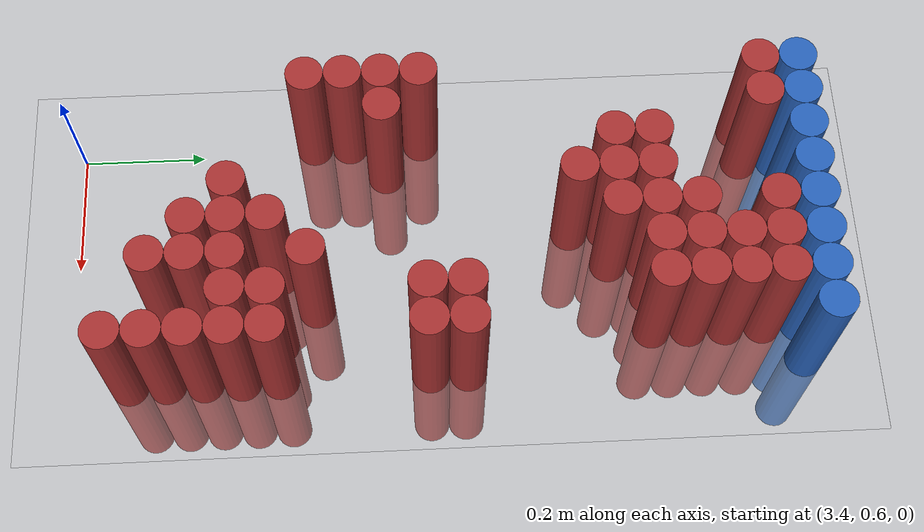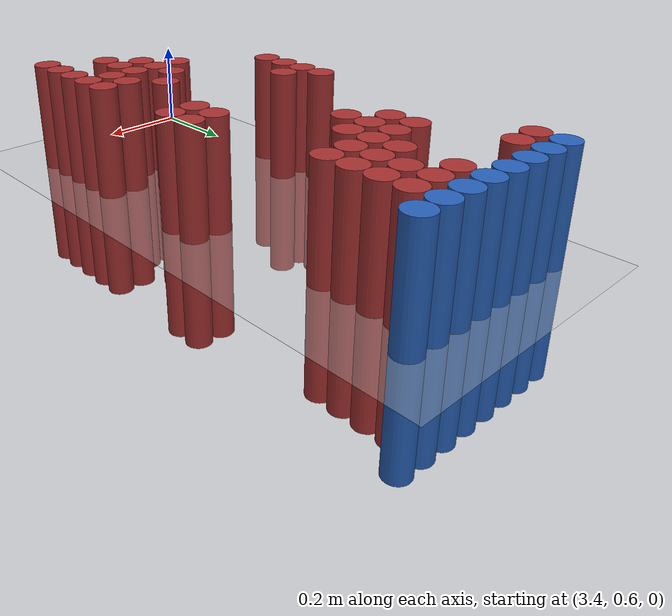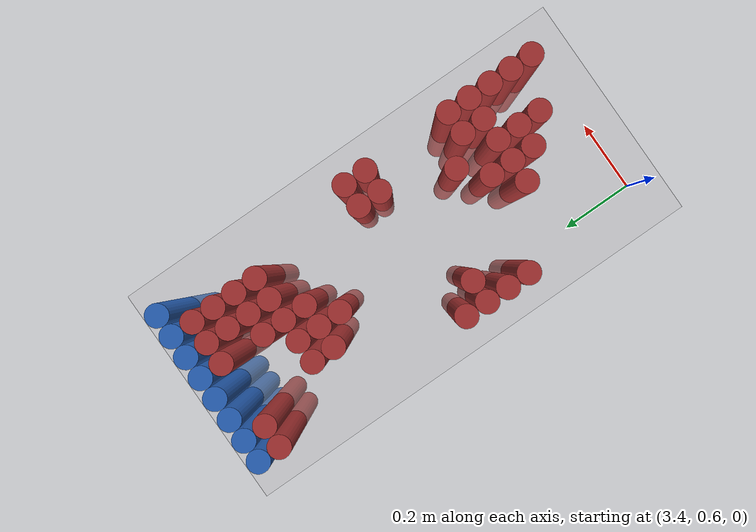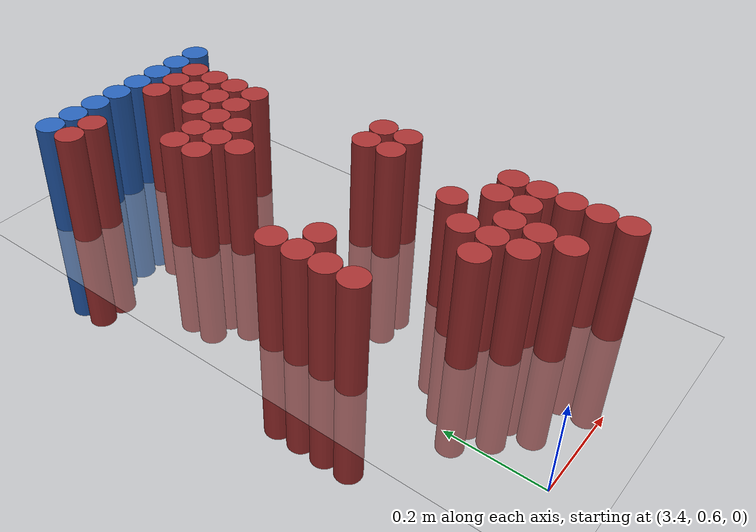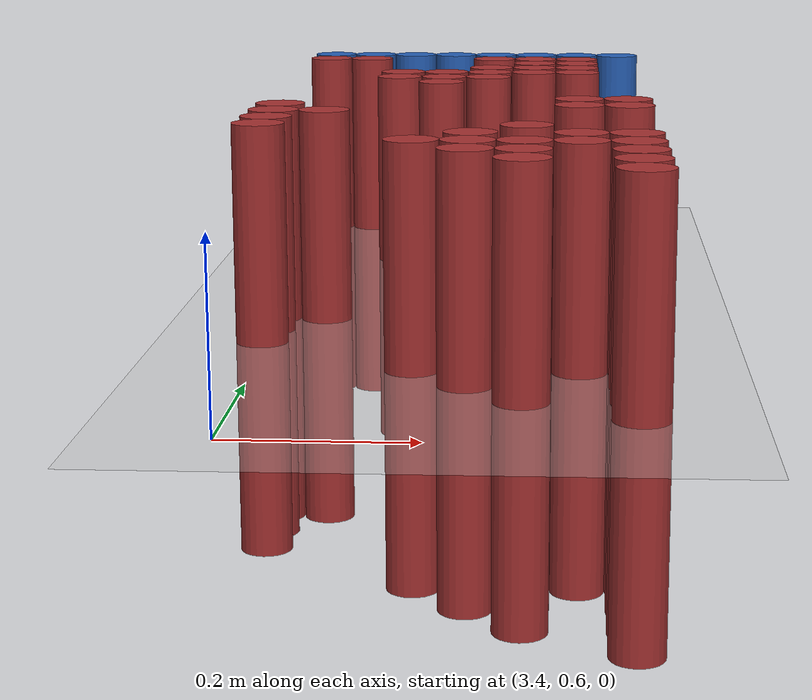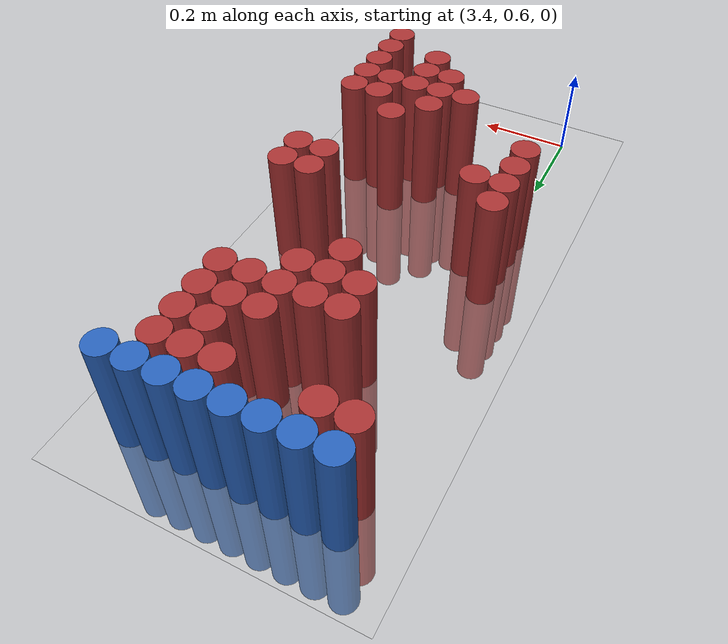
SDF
<sdf version="1.6">
 <world name="default">
  <model name="ground_plane">
   <static>1</static>
   <link name="link">
    <collision name="collision">
     <geometry><plane><normal>0 0 1</normal><size>100 100</size></plane></geometry>
     <surface><friction><ode><mu>100</mu><mu2>50</mu2></ode></friction></surface>
    </collision>
    <visual name="visual">
     <cast_shadows>0</cast_shadows>
     <geometry><plane><normal>0 0 1</normal><size>100 100</size></plane></geometry>
     <material>
      <script><uri>file://media/materials/scripts/gazebo.material</uri><name>Gazebo/Grey</name></script>
     </material>
    </visual>
   </link>
  </model>
  <model name="unit_cylinder_117">
   <static>1</static>
   <pose>3.390000 1.770000 0.000000 0.000000 0.000000 0.000000</pose>
   <link name="link">
    <inertial>
     <mass>1</mass>
     <inertia><ixx>0.145833</ixx><ixy>0</ixy><ixz>0</ixz><iyy>0.145833</iyy><iyz>0</iyz><izz>0.125</izz></inertia>
    </inertial>
    <collision name="collision">
     <geometry><cylinder><radius>0.030000</radius><length>0.5</length></cylinder></geometry>
    </collision>
    <visual name="visual">
     <geometry><cylinder><radius>0.030000</radius><length>0.5</length></cylinder></geometry>
     <material>
      <ambient>0.152000 0.379000 0.720000 1</ambient>
      <diffuse>0.152000 0.379000 0.720000 1</diffuse>
     </material>
     <material>
      <script><name>Gazebo/Grey</name><uri>file://media/materials/scripts/gazebo.material</uri></script>
     </material>
    </visual>
   </link>
  </model>
  <model name="unit_cylinder_118">
   <static>1</static>
   <pose>3.450000 1.770000 0.000000 0.000000 0.000000 0.000000</pose>
   <link name="link">
    <inertial>
     <mass>1</mass>
     <inertia><ixx>0.145833</ixx><ixy>0</ixy><ixz>0</ixz><iyy>0.145833</iyy><iyz>0</iyz><izz>0.125</izz></inertia>
    </inertial>
    <collision name="collision">
     <geometry><cylinder><radius>0.030000</radius><length>0.5</length></cylinder></geometry>
    </collision>
    <visual name="visual">
     <geometry><cylinder><radius>0.030000</radius><length>0.5</length></cylinder></geometry>
     <material>
      <ambient>0.152000 0.379000 0.720000 1</ambient>
      <diffuse>0.152000 0.379000 0.720000 1</diffuse>
     </material>
     <material>
      <script><name>Gazebo/Grey</name><uri>file://media/materials/scripts/gazebo.material</uri></script>
     </material>
    </visual>
   </link>
  </model>
  <model name="unit_cylinder_119">
   <static>1</static>
   <pose>3.510000 1.770000 0.000000 0.000000 0.000000 0.000000</pose>
   <link name="link">
    <inertial>
     <mass>1</mass>
     <inertia><ixx>0.145833</ixx><ixy>0</ixy><ixz>0</ixz><iyy>0.145833</iyy><iyz>0</iyz><izz>0.125</izz></inertia>
    </inertial>
    <collision name="collision">
     <geometry><cylinder><radius>0.030000</radius><length>0.5</length></cylinder></geometry>
    </collision>
    <visual name="visual">
     <geometry><cylinder><radius>0.030000</radius><length>0.5</length></cylinder></geometry>
     <material>
      <ambient>0.152000 0.379000 0.720000 1</ambient>
      <diffuse>0.152000 0.379000 0.720000 1</diffuse>
     </material>
     <material>
      <script><name>Gazebo/Grey</name><uri>file://media/materials/scripts/gazebo.material</uri></script>
     </material>
    </visual>
   </link>
  </model>
  <model name="unit_cylinder_120">
   <static>1</static>
   <pose>3.570000 1.770000 0.000000 0.000000 0.000000 0.000000</pose>
   <link name="link">
    <inertial>
     <mass>1</mass>
     <inertia><ixx>0.145833</ixx><ixy>0</ixy><ixz>0</ixz><iyy>0.145833</iyy><iyz>0</iyz><izz>0.125</izz></inertia>
    </inertial>
    <collision name="collision">
     <geometry><cylinder><radius>0.030000</radius><length>0.5</length></cylinder></geometry>
    </collision>
    <visual name="visual">
     <geometry><cylinder><radius>0.030000</radius><length>0.5</length></cylinder></geometry>
     <material>
      <ambient>0.152000 0.379000 0.720000 1</ambient>
      <diffuse>0.152000 0.379000 0.720000 1</diffuse>
     </material>
     <material>
      <script><name>Gazebo/Grey</name><uri>file://media/materials/scripts/gazebo.material</uri></script>
     </material>
    </visual>
   </link>
  </model>
  <model name="unit_cylinder_121">
   <static>1</static>
   <pose>3.630000 1.770000 0.000000 0.000000 0.000000 0.000000</pose>
   <link name="link">
    <inertial>
     <mass>1</mass>
     <inertia><ixx>0.145833</ixx><ixy>0</ixy><ixz>0</ixz><iyy>0.145833</iyy><iyz>0</iyz><izz>0.125</izz></inertia>
    </inertial>
    <collision name="collision">
     <geometry><cylinder><radius>0.030000</radius><length>0.5</length></cylinder></geometry>
    </collision>
    <visual name="visual">
     <geometry><cylinder><radius>0.030000</radius><length>0.5</length></cylinder></geometry>
     <material>
      <ambient>0.152000 0.379000 0.720000 1</ambient>
      <diffuse>0.152000 0.379000 0.720000 1</diffuse>
     </material>
     <material>
      <script><name>Gazebo/Grey</name><uri>file://media/materials/scripts/gazebo.material</uri></script>
     </material>
    </visual>
   </link>
  </model>
  <model name="unit_cylinder_122">
   <static>1</static>
   <pose>3.690000 1.770000 0.000000 0.000000 0.000000 0.000000</pose>
   <link name="link">
    <inertial>
     <mass>1</mass>
     <inertia><ixx>0.145833</ixx><ixy>0</ixy><ixz>0</ixz><iyy>0.145833</iyy><iyz>0</iyz><izz>0.125</izz></inertia>
    </inertial>
    <collision name="collision">
     <geometry><cylinder><radius>0.030000</radius><length>0.5</length></cylinder></geometry>
    </collision>
    <visual name="visual">
     <geometry><cylinder><radius>0.030000</radius><length>0.5</length></cylinder></geometry>
     <material>
      <ambient>0.152000 0.379000 0.720000 1</ambient>
      <diffuse>0.152000 0.379000 0.720000 1</diffuse>
     </material>
     <material>
      <script><name>Gazebo/Grey</name><uri>file://media/materials/scripts/gazebo.material</uri></script>
     </material>
    </visual>
   </link>
  </model>
  <model name="unit_cylinder_123">
   <static>1</static>
   <pose>3.750000 1.770000 0.000000 0.000000 0.000000 0.000000</pose>
   <link name="link">
    <inertial>
     <mass>1</mass>
     <inertia><ixx>0.145833</ixx><ixy>0</ixy><ixz>0</ixz><iyy>0.145833</iyy><iyz>0</iyz><izz>0.125</izz></inertia>
    </inertial>
    <collision name="collision">
     <geometry><cylinder><radius>0.030000</radius><length>0.5</length></cylinder></geometry>
    </collision>
    <visual name="visual">
     <geometry><cylinder><radius>0.030000</radius><length>0.5</length></cylinder></geometry>
     <material>
      <ambient>0.152000 0.379000 0.720000 1</ambient>
      <diffuse>0.152000 0.379000 0.720000 1</diffuse>
     </material>
     <material>
      <script><name>Gazebo/Grey</name><uri>file://media/materials/scripts/gazebo.material</uri></script>
     </material>
    </visual>
   </link>
  </model>
  <model name="unit_cylinder_124">
   <static>1</static>
   <pose>3.810000 1.770000 0.000000 0.000000 0.000000 0.000000</pose>
   <link name="link">
    <inertial>
     <mass>1</mass>
     <inertia><ixx>0.145833</ixx><ixy>0</ixy><ixz>0</ixz><iyy>0.145833</iyy><iyz>0</iyz><izz>0.125</izz></inertia>
    </inertial>
    <collision name="collision">
     <geometry><cylinder><radius>0.030000</radius><length>0.5</length></cylinder></geometry>
    </collision>
    <visual name="visual">
     <geometry><cylinder><radius>0.030000</radius><length>0.5</length></cylinder></geometry>
     <material>
      <ambient>0.152000 0.379000 0.720000 1</ambient>
      <diffuse>0.152000 0.379000 0.720000 1</diffuse>
     </material>
     <material>
      <script><name>Gazebo/Grey</name><uri>file://media/materials/scripts/gazebo.material</uri></script>
     </material>
    </visual>
   </link>
  </model>
  <model name="unit_cylinder_131">
   <static>1</static>
   <pose>3.390000 1.710000 0.000000 0.000000 0.000000 0.000000</pose>
   <link name="link">
    <inertial>
     <mass>1</mass>
     <inertia><ixx>0.145833</ixx><ixy>0</ixy><ixz>0</ixz><iyy>0.145833</iyy><iyz>0</iyz><izz>0.125</izz></inertia>
    </inertial>
    <collision name="collision">
     <geometry><cylinder><radius>0.030000</radius><length>0.5</length></cylinder></geometry>
    </collision>
    <visual name="visual">
     <geometry><cylinder><radius>0.030000</radius><length>0.5</length></cylinder></geometry>
     <material>
      <ambient>0.648000 0.192000 0.192000 1</ambient>
      <diffuse>0.648000 0.192000 0.192000 1</diffuse>
     </material>
     <material>
      <script><name>Gazebo/Grey</name><uri>file://media/materials/scripts/gazebo.material</uri></script>
     </material>
    </visual>
   </link>
  </model>
  <model name="unit_cylinder_132">
   <static>1</static>
   <pose>3.450000 1.710000 0.000000 0.000000 0.000000 0.000000</pose>
   <link name="link">
    <inertial>
     <mass>1</mass>
     <inertia><ixx>0.145833</ixx><ixy>0</ixy><ixz>0</ixz><iyy>0.145833</iyy><iyz>0</iyz><izz>0.125</izz></inertia>
    </inertial>
    <collision name="collision">
     <geometry><cylinder><radius>0.030000</radius><length>0.5</length></cylinder></geometry>
    </collision>
    <visual name="visual">
     <geometry><cylinder><radius>0.030000</radius><length>0.5</length></cylinder></geometry>
     <material>
      <ambient>0.648000 0.192000 0.192000 1</ambient>
      <diffuse>0.648000 0.192000 0.192000 1</diffuse>
     </material>
     <material>
      <script><name>Gazebo/Grey</name><uri>file://media/materials/scripts/gazebo.material</uri></script>
     </material>
    </visual>
   </link>
  </model>
  <model name="unit_cylinder_133">
   <static>1</static>
   <pose>3.630000 1.710000 0.000000 0.000000 0.000000 0.000000</pose>
   <link name="link">
    <inertial>
     <mass>1</mass>
     <inertia><ixx>0.145833</ixx><ixy>0</ixy><ixz>0</ixz><iyy>0.145833</iyy><iyz>0</iyz><izz>0.125</izz></inertia>
    </inertial>
    <collision name="collision">
     <geometry><cylinder><radius>0.030000</radius><length>0.5</length></cylinder></geometry>
    </collision>
    <visual name="visual">
     <geometry><cylinder><radius>0.030000</radius><length>0.5</length></cylinder></geometry>
     <material>
      <ambient>0.648000 0.192000 0.192000 1</ambient>
      <diffuse>0.648000 0.192000 0.192000 1</diffuse>
     </material>
     <material>
      <script><name>Gazebo/Grey</name><uri>file://media/materials/scripts/gazebo.material</uri></script>
     </material>
    </visual>
   </link>
  </model>
  <model name="unit_cylinder_134">
   <static>1</static>
   <pose>3.690000 1.710000 0.000000 0.000000 0.000000 0.000000</pose>
   <link name="link">
    <inertial>
     <mass>1</mass>
     <inertia><ixx>0.145833</ixx><ixy>0</ixy><ixz>0</ixz><iyy>0.145833</iyy><iyz>0</iyz><izz>0.125</izz></inertia>
    </inertial>
    <collision name="collision">
     <geometry><cylinder><radius>0.030000</radius><length>0.5</length></cylinder></geometry>
    </collision>
    <visual name="visual">
     <geometry><cylinder><radius>0.030000</radius><length>0.5</length></cylinder></geometry>
     <material>
      <ambient>0.648000 0.192000 0.192000 1</ambient>
      <diffuse>0.648000 0.192000 0.192000 1</diffuse>
     </material>
     <material>
      <script><name>Gazebo/Grey</name><uri>file://media/materials/scripts/gazebo.material</uri></script>
     </material>
    </visual>
   </link>
  </model>
  <model name="unit_cylinder_135">
   <static>1</static>
   <pose>3.750000 1.710000 0.000000 0.000000 0.000000 0.000000</pose>
   <link name="link">
    <inertial>
     <mass>1</mass>
     <inertia><ixx>0.145833</ixx><ixy>0</ixy><ixz>0</ixz><iyy>0.145833</iyy><iyz>0</iyz><izz>0.125</izz></inertia>
    </inertial>
    <collision name="collision">
     <geometry><cylinder><radius>0.030000</radius><length>0.5</length></cylinder></geometry>
    </collision>
    <visual name="visual">
     <geometry><cylinder><radius>0.030000</radius><length>0.5</length></cylinder></geometry>
     <material>
      <ambient>0.648000 0.192000 0.192000 1</ambient>
      <diffuse>0.648000 0.192000 0.192000 1</diffuse>
     </material>
     <material>
      <script><name>Gazebo/Grey</name><uri>file://media/materials/scripts/gazebo.material</uri></script>
     </material>
    </visual>
   </link>
  </model>
  <model name="unit_cylinder_139">
   <static>1</static>
   <pose>3.690000 1.650000 0.000000 0.000000 0.000000 0.000000</pose>
   <link name="link">
    <inertial>
     <mass>1</mass>
     <inertia><ixx>0.145833</ixx><ixy>0</ixy><ixz>0</ixz><iyy>0.145833</iyy><iyz>0</iyz><izz>0.125</izz></inertia>
    </inertial>
    <collision name="collision">
     <geometry><cylinder><radius>0.030000</radius><length>0.5</length></cylinder></geometry>
    </collision>
    <visual name="visual">
     <geometry><cylinder><radius>0.030000</radius><length>0.5</length></cylinder></geometry>
     <material>
      <ambient>0.648000 0.192000 0.192000 1</ambient>
      <diffuse>0.648000 0.192000 0.192000 1</diffuse>
     </material>
     <material>
      <script><name>Gazebo/Grey</name><uri>file://media/materials/scripts/gazebo.material</uri></script>
     </material>
    </visual>
   </link>
  </model>
  <model name="unit_cylinder_140">
   <static>1</static>
   <pose>3.750000 1.650000 0.000000 0.000000 0.000000 0.000000</pose>
   <link name="link">
    <inertial>
     <mass>1</mass>
     <inertia><ixx>0.145833</ixx><ixy>0</ixy><ixz>0</ixz><iyy>0.145833</iyy><iyz>0</iyz><izz>0.125</izz></inertia>
    </inertial>
    <collision name="collision">
     <geometry><cylinder><radius>0.030000</radius><length>0.5</length></cylinder></geometry>
    </collision>
    <visual name="visual">
     <geometry><cylinder><radius>0.030000</radius><length>0.5</length></cylinder></geometry>
     <material>
      <ambient>0.648000 0.192000 0.192000 1</ambient>
      <diffuse>0.648000 0.192000 0.192000 1</diffuse>
     </material>
     <material>
      <script><name>Gazebo/Grey</name><uri>file://media/materials/scripts/gazebo.material</uri></script>
     </material>
    </visual>
   </link>
  </model>
  <model name="unit_cylinder_144">
   <static>1</static>
   <pose>3.630000 1.590000 0.000000 0.000000 0.000000 0.000000</pose>
   <link name="link">
    <inertial>
     <mass>1</mass>
     <inertia><ixx>0.145833</ixx><ixy>0</ixy><ixz>0</ixz><iyy>0.145833</iyy><iyz>0</iyz><izz>0.125</izz></inertia>
    </inertial>
    <collision name="collision">
     <geometry><cylinder><radius>0.030000</radius><length>0.5</length></cylinder></geometry>
    </collision>
    <visual name="visual">
     <geometry><cylinder><radius>0.030000</radius><length>0.5</length></cylinder></geometry>
     <material>
      <ambient>0.648000 0.192000 0.192000 1</ambient>
      <diffuse>0.648000 0.192000 0.192000 1</diffuse>
     </material>
     <material>
      <script><name>Gazebo/Grey</name><uri>file://media/materials/scripts/gazebo.material</uri></script>
     </material>
    </visual>
   </link>
  </model>
  <model name="unit_cylinder_145">
   <static>1</static>
   <pose>3.690000 1.590000 0.000000 0.000000 0.000000 0.000000</pose>
   <link name="link">
    <inertial>
     <mass>1</mass>
     <inertia><ixx>0.145833</ixx><ixy>0</ixy><ixz>0</ixz><iyy>0.145833</iyy><iyz>0</iyz><izz>0.125</izz></inertia>
    </inertial>
    <collision name="collision">
     <geometry><cylinder><radius>0.030000</radius><length>0.5</length></cylinder></geometry>
    </collision>
    <visual name="visual">
     <geometry><cylinder><radius>0.030000</radius><length>0.5</length></cylinder></geometry>
     <material>
      <ambient>0.648000 0.192000 0.192000 1</ambient>
      <diffuse>0.648000 0.192000 0.192000 1</diffuse>
     </material>
     <material>
      <script><name>Gazebo/Grey</name><uri>file://media/materials/scripts/gazebo.material</uri></script>
     </material>
    </visual>
   </link>
  </model>
  <model name="unit_cylinder_146">
   <static>1</static>
   <pose>3.750000 1.590000 0.000000 0.000000 0.000000 0.000000</pose>
   <link name="link">
    <inertial>
     <mass>1</mass>
     <inertia><ixx>0.145833</ixx><ixy>0</ixy><ixz>0</ixz><iyy>0.145833</iyy><iyz>0</iyz><izz>0.125</izz></inertia>
    </inertial>
    <collision name="collision">
     <geometry><cylinder><radius>0.030000</radius><length>0.5</length></cylinder></geometry>
    </collision>
    <visual name="visual">
     <geometry><cylinder><radius>0.030000</radius><length>0.5</length></cylinder></geometry>
     <material>
      <ambient>0.648000 0.192000 0.192000 1</ambient>
      <diffuse>0.648000 0.192000 0.192000 1</diffuse>
     </material>
     <material>
      <script><name>Gazebo/Grey</name><uri>file://media/materials/scripts/gazebo.material</uri></script>
     </material>
    </visual>
   </link>
  </model>
  <model name="unit_cylinder_150">
   <static>1</static>
   <pose>3.510000 1.530000 0.000000 0.000000 0.000000 0.000000</pose>
   <link name="link">
    <inertial>
     <mass>1</mass>
     <inertia><ixx>0.145833</ixx><ixy>0</ixy><ixz>0</ixz><iyy>0.145833</iyy><iyz>0</iyz><izz>0.125</izz></inertia>
    </inertial>
    <collision name="collision">
     <geometry><cylinder><radius>0.030000</radius><length>0.5</length></cylinder></geometry>
    </collision>
    <visual name="visual">
     <geometry><cylinder><radius>0.030000</radius><length>0.5</length></cylinder></geometry>
     <material>
      <ambient>0.648000 0.192000 0.192000 1</ambient>
      <diffuse>0.648000 0.192000 0.192000 1</diffuse>
     </material>
     <material>
      <script><name>Gazebo/Grey</name><uri>file://media/materials/scripts/gazebo.material</uri></script>
     </material>
    </visual>
   </link>
  </model>
  <model name="unit_cylinder_151">
   <static>1</static>
   <pose>3.570000 1.530000 0.000000 0.000000 0.000000 0.000000</pose>
   <link name="link">
    <inertial>
     <mass>1</mass>
     <inertia><ixx>0.145833</ixx><ixy>0</ixy><ixz>0</ixz><iyy>0.145833</iyy><iyz>0</iyz><izz>0.125</izz></inertia>
    </inertial>
    <collision name="collision">
     <geometry><cylinder><radius>0.030000</radius><length>0.5</length></cylinder></geometry>
    </collision>
    <visual name="visual">
     <geometry><cylinder><radius>0.030000</radius><length>0.5</length></cylinder></geometry>
     <material>
      <ambient>0.648000 0.192000 0.192000 1</ambient>
      <diffuse>0.648000 0.192000 0.192000 1</diffuse>
     </material>
     <material>
      <script><name>Gazebo/Grey</name><uri>file://media/materials/scripts/gazebo.material</uri></script>
     </material>
    </visual>
   </link>
  </model>
  <model name="unit_cylinder_152">
   <static>1</static>
   <pose>3.630000 1.530000 0.000000 0.000000 0.000000 0.000000</pose>
   <link name="link">
    <inertial>
     <mass>1</mass>
     <inertia><ixx>0.145833</ixx><ixy>0</ixy><ixz>0</ixz><iyy>0.145833</iyy><iyz>0</iyz><izz>0.125</izz></inertia>
    </inertial>
    <collision name="collision">
     <geometry><cylinder><radius>0.030000</radius><length>0.5</length></cylinder></geometry>
    </collision>
    <visual name="visual">
     <geometry><cylinder><radius>0.030000</radius><length>0.5</length></cylinder></geometry>
     <material>
      <ambient>0.648000 0.192000 0.192000 1</ambient>
      <diffuse>0.648000 0.192000 0.192000 1</diffuse>
     </material>
     <material>
      <script><name>Gazebo/Grey</name><uri>file://media/materials/scripts/gazebo.material</uri></script>
     </material>
    </visual>
   </link>
  </model>
  <model name="unit_cylinder_153">
   <static>1</static>
   <pose>3.690000 1.530000 0.000000 0.000000 0.000000 0.000000</pose>
   <link name="link">
    <inertial>
     <mass>1</mass>
     <inertia><ixx>0.145833</ixx><ixy>0</ixy><ixz>0</ixz><iyy>0.145833</iyy><iyz>0</iyz><izz>0.125</izz></inertia>
    </inertial>
    <collision name="collision">
     <geometry><cylinder><radius>0.030000</radius><length>0.5</length></cylinder></geometry>
    </collision>
    <visual name="visual">
     <geometry><cylinder><radius>0.030000</radius><length>0.5</length></cylinder></geometry>
     <material>
      <ambient>0.648000 0.192000 0.192000 1</ambient>
      <diffuse>0.648000 0.192000 0.192000 1</diffuse>
     </material>
     <material>
      <script><name>Gazebo/Grey</name><uri>file://media/materials/scripts/gazebo.material</uri></script>
     </material>
    </visual>
   </link>
  </model>
  <model name="unit_cylinder_154">
   <static>1</static>
   <pose>3.750000 1.530000 0.000000 0.000000 0.000000 0.000000</pose>
   <link name="link">
    <inertial>
     <mass>1</mass>
     <inertia><ixx>0.145833</ixx><ixy>0</ixy><ixz>0</ixz><iyy>0.145833</iyy><iyz>0</iyz><izz>0.125</izz></inertia>
    </inertial>
    <collision name="collision">
     <geometry><cylinder><radius>0.030000</radius><length>0.5</length></cylinder></geometry>
    </collision>
    <visual name="visual">
     <geometry><cylinder><radius>0.030000</radius><length>0.5</length></cylinder></geometry>
     <material>
      <ambient>0.648000 0.192000 0.192000 1</ambient>
      <diffuse>0.648000 0.192000 0.192000 1</diffuse>
     </material>
     <material>
      <script><name>Gazebo/Grey</name><uri>file://media/materials/scripts/gazebo.material</uri></script>
     </material>
    </visual>
   </link>
  </model>
  <model name="unit_cylinder_159">
   <static>1</static>
   <pose>3.510000 1.470000 0.000000 0.000000 0.000000 0.000000</pose>
   <link name="link">
    <inertial>
     <mass>1</mass>
     <inertia><ixx>0.145833</ixx><ixy>0</ixy><ixz>0</ixz><iyy>0.145833</iyy><iyz>0</iyz><izz>0.125</izz></inertia>
    </inertial>
    <collision name="collision">
     <geometry><cylinder><radius>0.030000</radius><length>0.5</length></cylinder></geometry>
    </collision>
    <visual name="visual">
     <geometry><cylinder><radius>0.030000</radius><length>0.5</length></cylinder></geometry>
     <material>
      <ambient>0.648000 0.192000 0.192000 1</ambient>
      <diffuse>0.648000 0.192000 0.192000 1</diffuse>
     </material>
     <material>
      <script><name>Gazebo/Grey</name><uri>file://media/materials/scripts/gazebo.material</uri></script>
     </material>
    </visual>
   </link>
  </model>
  <model name="unit_cylinder_160">
   <static>1</static>
   <pose>3.570000 1.470000 0.000000 0.000000 0.000000 0.000000</pose>
   <link name="link">
    <inertial>
     <mass>1</mass>
     <inertia><ixx>0.145833</ixx><ixy>0</ixy><ixz>0</ixz><iyy>0.145833</iyy><iyz>0</iyz><izz>0.125</izz></inertia>
    </inertial>
    <collision name="collision">
     <geometry><cylinder><radius>0.030000</radius><length>0.5</length></cylinder></geometry>
    </collision>
    <visual name="visual">
     <geometry><cylinder><radius>0.030000</radius><length>0.5</length></cylinder></geometry>
     <material>
      <ambient>0.648000 0.192000 0.192000 1</ambient>
      <diffuse>0.648000 0.192000 0.192000 1</diffuse>
     </material>
     <material>
      <script><name>Gazebo/Grey</name><uri>file://media/materials/scripts/gazebo.material</uri></script>
     </material>
    </visual>
   </link>
  </model>
  <model name="unit_cylinder_161">
   <static>1</static>
   <pose>3.630000 1.470000 0.000000 0.000000 0.000000 0.000000</pose>
   <link name="link">
    <inertial>
     <mass>1</mass>
     <inertia><ixx>0.145833</ixx><ixy>0</ixy><ixz>0</ixz><iyy>0.145833</iyy><iyz>0</iyz><izz>0.125</izz></inertia>
    </inertial>
    <collision name="collision">
     <geometry><cylinder><radius>0.030000</radius><length>0.5</length></cylinder></geometry>
    </collision>
    <visual name="visual">
     <geometry><cylinder><radius>0.030000</radius><length>0.5</length></cylinder></geometry>
     <material>
      <ambient>0.648000 0.192000 0.192000 1</ambient>
      <diffuse>0.648000 0.192000 0.192000 1</diffuse>
     </material>
     <material>
      <script><name>Gazebo/Grey</name><uri>file://media/materials/scripts/gazebo.material</uri></script>
     </material>
    </visual>
   </link>
  </model>
  <model name="unit_cylinder_165">
   <static>1</static>
   <pose>3.570000 1.410000 0.000000 0.000000 0.000000 0.000000</pose>
   <link name="link">
    <inertial>
     <mass>1</mass>
     <inertia><ixx>0.145833</ixx><ixy>0</ixy><ixz>0</ixz><iyy>0.145833</iyy><iyz>0</iyz><izz>0.125</izz></inertia>
    </inertial>
    <collision name="collision">
     <geometry><cylinder><radius>0.030000</radius><length>0.5</length></cylinder></geometry>
    </collision>
    <visual name="visual">
     <geometry><cylinder><radius>0.030000</radius><length>0.5</length></cylinder></geometry>
     <material>
      <ambient>0.648000 0.192000 0.192000 1</ambient>
      <diffuse>0.648000 0.192000 0.192000 1</diffuse>
     </material>
     <material>
      <script><name>Gazebo/Grey</name><uri>file://media/materials/scripts/gazebo.material</uri></script>
     </material>
    </visual>
   </link>
  </model>
  <model name="unit_cylinder_176">
   <static>1</static>
   <pose>3.750000 1.230000 0.000000 0.000000 0.000000 0.000000</pose>
   <link name="link">
    <inertial>
     <mass>1</mass>
     <inertia><ixx>0.145833</ixx><ixy>0</ixy><ixz>0</ixz><iyy>0.145833</iyy><iyz>0</iyz><izz>0.125</izz></inertia>
    </inertial>
    <collision name="collision">
     <geometry><cylinder><radius>0.030000</radius><length>0.5</length></cylinder></geometry>
    </collision>
    <visual name="visual">
     <geometry><cylinder><radius>0.030000</radius><length>0.5</length></cylinder></geometry>
     <material>
      <ambient>0.648000 0.192000 0.192000 1</ambient>
      <diffuse>0.648000 0.192000 0.192000 1</diffuse>
     </material>
     <material>
      <script><name>Gazebo/Grey</name><uri>file://media/materials/scripts/gazebo.material</uri></script>
     </material>
    </visual>
   </link>
  </model>
  <model name="unit_cylinder_177">
   <static>1</static>
   <pose>3.810000 1.230000 0.000000 0.000000 0.000000 0.000000</pose>
   <link name="link">
    <inertial>
     <mass>1</mass>
     <inertia><ixx>0.145833</ixx><ixy>0</ixy><ixz>0</ixz><iyy>0.145833</iyy><iyz>0</iyz><izz>0.125</izz></inertia>
    </inertial>
    <collision name="collision">
     <geometry><cylinder><radius>0.030000</radius><length>0.5</length></cylinder></geometry>
    </collision>
    <visual name="visual">
     <geometry><cylinder><radius>0.030000</radius><length>0.5</length></cylinder></geometry>
     <material>
      <ambient>0.648000 0.192000 0.192000 1</ambient>
      <diffuse>0.648000 0.192000 0.192000 1</diffuse>
     </material>
     <material>
      <script><name>Gazebo/Grey</name><uri>file://media/materials/scripts/gazebo.material</uri></script>
     </material>
    </visual>
   </link>
  </model>
  <model name="unit_cylinder_179">
   <static>1</static>
   <pose>3.390000 1.170000 0.000000 0.000000 0.000000 0.000000</pose>
   <link name="link">
    <inertial>
     <mass>1</mass>
     <inertia><ixx>0.145833</ixx><ixy>0</ixy><ixz>0</ixz><iyy>0.145833</iyy><iyz>0</iyz><izz>0.125</izz></inertia>
    </inertial>
    <collision name="collision">
     <geometry><cylinder><radius>0.030000</radius><length>0.5</length></cylinder></geometry>
    </collision>
    <visual name="visual">
     <geometry><cylinder><radius>0.030000</radius><length>0.5</length></cylinder></geometry>
     <material>
      <ambient>0.648000 0.192000 0.192000 1</ambient>
      <diffuse>0.648000 0.192000 0.192000 1</diffuse>
     </material>
     <material>
      <script><name>Gazebo/Grey</name><uri>file://media/materials/scripts/gazebo.material</uri></script>
     </material>
    </visual>
   </link>
  </model>
  <model name="unit_cylinder_180">
   <static>1</static>
   <pose>3.750000 1.170000 0.000000 0.000000 0.000000 0.000000</pose>
   <link name="link">
    <inertial>
     <mass>1</mass>
     <inertia><ixx>0.145833</ixx><ixy>0</ixy><ixz>0</ixz><iyy>0.145833</iyy><iyz>0</iyz><izz>0.125</izz></inertia>
    </inertial>
    <collision name="collision">
     <geometry><cylinder><radius>0.030000</radius><length>0.5</length></cylinder></geometry>
    </collision>
    <visual name="visual">
     <geometry><cylinder><radius>0.030000</radius><length>0.5</length></cylinder></geometry>
     <material>
      <ambient>0.648000 0.192000 0.192000 1</ambient>
      <diffuse>0.648000 0.192000 0.192000 1</diffuse>
     </material>
     <material>
      <script><name>Gazebo/Grey</name><uri>file://media/materials/scripts/gazebo.material</uri></script>
     </material>
    </visual>
   </link>
  </model>
  <model name="unit_cylinder_181">
   <static>1</static>
   <pose>3.810000 1.170000 0.000000 0.000000 0.000000 0.000000</pose>
   <link name="link">
    <inertial>
     <mass>1</mass>
     <inertia><ixx>0.145833</ixx><ixy>0</ixy><ixz>0</ixz><iyy>0.145833</iyy><iyz>0</iyz><izz>0.125</izz></inertia>
    </inertial>
    <collision name="collision">
     <geometry><cylinder><radius>0.030000</radius><length>0.5</length></cylinder></geometry>
    </collision>
    <visual name="visual">
     <geometry><cylinder><radius>0.030000</radius><length>0.5</length></cylinder></geometry>
     <material>
      <ambient>0.648000 0.192000 0.192000 1</ambient>
      <diffuse>0.648000 0.192000 0.192000 1</diffuse>
     </material>
     <material>
      <script><name>Gazebo/Grey</name><uri>file://media/materials/scripts/gazebo.material</uri></script>
     </material>
    </visual>
   </link>
  </model>
  <model name="unit_cylinder_185">
   <static>1</static>
   <pose>3.390000 1.110000 0.000000 0.000000 0.000000 0.000000</pose>
   <link name="link">
    <inertial>
     <mass>1</mass>
     <inertia><ixx>0.145833</ixx><ixy>0</ixy><ixz>0</ixz><iyy>0.145833</iyy><iyz>0</iyz><izz>0.125</izz></inertia>
    </inertial>
    <collision name="collision">
     <geometry><cylinder><radius>0.030000</radius><length>0.5</length></cylinder></geometry>
    </collision>
    <visual name="visual">
     <geometry><cylinder><radius>0.030000</radius><length>0.5</length></cylinder></geometry>
     <material>
      <ambient>0.648000 0.192000 0.192000 1</ambient>
      <diffuse>0.648000 0.192000 0.192000 1</diffuse>
     </material>
     <material>
      <script><name>Gazebo/Grey</name><uri>file://media/materials/scripts/gazebo.material</uri></script>
     </material>
    </visual>
   </link>
  </model>
  <model name="unit_cylinder_186">
   <static>1</static>
   <pose>3.450000 1.110000 0.000000 0.000000 0.000000 0.000000</pose>
   <link name="link">
    <inertial>
     <mass>1</mass>
     <inertia><ixx>0.145833</ixx><ixy>0</ixy><ixz>0</ixz><iyy>0.145833</iyy><iyz>0</iyz><izz>0.125</izz></inertia>
    </inertial>
    <collision name="collision">
     <geometry><cylinder><radius>0.030000</radius><length>0.5</length></cylinder></geometry>
    </collision>
    <visual name="visual">
     <geometry><cylinder><radius>0.030000</radius><length>0.5</length></cylinder></geometry>
     <material>
      <ambient>0.648000 0.192000 0.192000 1</ambient>
      <diffuse>0.648000 0.192000 0.192000 1</diffuse>
     </material>
     <material>
      <script><name>Gazebo/Grey</name><uri>file://media/materials/scripts/gazebo.material</uri></script>
     </material>
    </visual>
   </link>
  </model>
  <model name="unit_cylinder_189">
   <static>1</static>
   <pose>3.390000 1.050000 0.000000 0.000000 0.000000 0.000000</pose>
   <link name="link">
    <inertial>
     <mass>1</mass>
     <inertia><ixx>0.145833</ixx><ixy>0</ixy><ixz>0</ixz><iyy>0.145833</iyy><iyz>0</iyz><izz>0.125</izz></inertia>
    </inertial>
    <collision name="collision">
     <geometry><cylinder><radius>0.030000</radius><length>0.5</length></cylinder></geometry>
    </collision>
    <visual name="visual">
     <geometry><cylinder><radius>0.030000</radius><length>0.5</length></cylinder></geometry>
     <material>
      <ambient>0.648000 0.192000 0.192000 1</ambient>
      <diffuse>0.648000 0.192000 0.192000 1</diffuse>
     </material>
     <material>
      <script><name>Gazebo/Grey</name><uri>file://media/materials/scripts/gazebo.material</uri></script>
     </material>
    </visual>
   </link>
  </model>
  <model name="unit_cylinder_192">
   <static>1</static>
   <pose>3.390000 0.990000 0.000000 0.000000 0.000000 0.000000</pose>
   <link name="link">
    <inertial>
     <mass>1</mass>
     <inertia><ixx>0.145833</ixx><ixy>0</ixy><ixz>0</ixz><iyy>0.145833</iyy><iyz>0</iyz><izz>0.125</izz></inertia>
    </inertial>
    <collision name="collision">
     <geometry><cylinder><radius>0.030000</radius><length>0.5</length></cylinder></geometry>
    </collision>
    <visual name="visual">
     <geometry><cylinder><radius>0.030000</radius><length>0.5</length></cylinder></geometry>
     <material>
      <ambient>0.648000 0.192000 0.192000 1</ambient>
      <diffuse>0.648000 0.192000 0.192000 1</diffuse>
     </material>
     <material>
      <script><name>Gazebo/Grey</name><uri>file://media/materials/scripts/gazebo.material</uri></script>
     </material>
    </visual>
   </link>
  </model>
  <model name="unit_cylinder_193">
   <static>1</static>
   <pose>3.690000 0.990000 0.000000 0.000000 0.000000 0.000000</pose>
   <link name="link">
    <inertial>
     <mass>1</mass>
     <inertia><ixx>0.145833</ixx><ixy>0</ixy><ixz>0</ixz><iyy>0.145833</iyy><iyz>0</iyz><izz>0.125</izz></inertia>
    </inertial>
    <collision name="collision">
     <geometry><cylinder><radius>0.030000</radius><length>0.5</length></cylinder></geometry>
    </collision>
    <visual name="visual">
     <geometry><cylinder><radius>0.030000</radius><length>0.5</length></cylinder></geometry>
     <material>
      <ambient>0.648000 0.192000 0.192000 1</ambient>
      <diffuse>0.648000 0.192000 0.192000 1</diffuse>
     </material>
     <material>
      <script><name>Gazebo/Grey</name><uri>file://media/materials/scripts/gazebo.material</uri></script>
     </material>
    </visual>
   </link>
  </model>
  <model name="unit_cylinder_200">
   <static>1</static>
   <pose>3.630000 0.930000 0.000000 0.000000 0.000000 0.000000</pose>
   <link name="link">
    <inertial>
     <mass>1</mass>
     <inertia><ixx>0.145833</ixx><ixy>0</ixy><ixz>0</ixz><iyy>0.145833</iyy><iyz>0</iyz><izz>0.125</izz></inertia>
    </inertial>
    <collision name="collision">
     <geometry><cylinder><radius>0.030000</radius><length>0.5</length></cylinder></geometry>
    </collision>
    <visual name="visual">
     <geometry><cylinder><radius>0.030000</radius><length>0.5</length></cylinder></geometry>
     <material>
      <ambient>0.648000 0.192000 0.192000 1</ambient>
      <diffuse>0.648000 0.192000 0.192000 1</diffuse>
     </material>
     <material>
      <script><name>Gazebo/Grey</name><uri>file://media/materials/scripts/gazebo.material</uri></script>
     </material>
    </visual>
   </link>
  </model>
  <model name="unit_cylinder_201">
   <static>1</static>
   <pose>3.750000 0.930000 0.000000 0.000000 0.000000 0.000000</pose>
   <link name="link">
    <inertial>
     <mass>1</mass>
     <inertia><ixx>0.145833</ixx><ixy>0</ixy><ixz>0</ixz><iyy>0.145833</iyy><iyz>0</iyz><izz>0.125</izz></inertia>
    </inertial>
    <collision name="collision">
     <geometry><cylinder><radius>0.030000</radius><length>0.5</length></cylinder></geometry>
    </collision>
    <visual name="visual">
     <geometry><cylinder><radius>0.030000</radius><length>0.5</length></cylinder></geometry>
     <material>
      <ambient>0.648000 0.192000 0.192000 1</ambient>
      <diffuse>0.648000 0.192000 0.192000 1</diffuse>
     </material>
     <material>
      <script><name>Gazebo/Grey</name><uri>file://media/materials/scripts/gazebo.material</uri></script>
     </material>
    </visual>
   </link>
  </model>
  <model name="unit_cylinder_202">
   <static>1</static>
   <pose>3.810000 0.930000 0.000000 0.000000 0.000000 0.000000</pose>
   <link name="link">
    <inertial>
     <mass>1</mass>
     <inertia><ixx>0.145833</ixx><ixy>0</ixy><ixz>0</ixz><iyy>0.145833</iyy><iyz>0</iyz><izz>0.125</izz></inertia>
    </inertial>
    <collision name="collision">
     <geometry><cylinder><radius>0.030000</radius><length>0.5</length></cylinder></geometry>
    </collision>
    <visual name="visual">
     <geometry><cylinder><radius>0.030000</radius><length>0.5</length></cylinder></geometry>
     <material>
      <ambient>0.648000 0.192000 0.192000 1</ambient>
      <diffuse>0.648000 0.192000 0.192000 1</diffuse>
     </material>
     <material>
      <script><name>Gazebo/Grey</name><uri>file://media/materials/scripts/gazebo.material</uri></script>
     </material>
    </visual>
   </link>
  </model>
  <model name="unit_cylinder_211">
   <static>1</static>
   <pose>3.570000 0.870000 0.000000 0.000000 0.000000 0.000000</pose>
   <link name="link">
    <inertial>
     <mass>1</mass>
     <inertia><ixx>0.145833</ixx><ixy>0</ixy><ixz>0</ixz><iyy>0.145833</iyy><iyz>0</iyz><izz>0.125</izz></inertia>
    </inertial>
    <collision name="collision">
     <geometry><cylinder><radius>0.030000</radius><length>0.5</length></cylinder></geometry>
    </collision>
    <visual name="visual">
     <geometry><cylinder><radius>0.030000</radius><length>0.5</length></cylinder></geometry>
     <material>
      <ambient>0.648000 0.192000 0.192000 1</ambient>
      <diffuse>0.648000 0.192000 0.192000 1</diffuse>
     </material>
     <material>
      <script><name>Gazebo/Grey</name><uri>file://media/materials/scripts/gazebo.material</uri></script>
     </material>
    </visual>
   </link>
  </model>
  <model name="unit_cylinder_212">
   <static>1</static>
   <pose>3.630000 0.870000 0.000000 0.000000 0.000000 0.000000</pose>
   <link name="link">
    <inertial>
     <mass>1</mass>
     <inertia><ixx>0.145833</ixx><ixy>0</ixy><ixz>0</ixz><iyy>0.145833</iyy><iyz>0</iyz><izz>0.125</izz></inertia>
    </inertial>
    <collision name="collision">
     <geometry><cylinder><radius>0.030000</radius><length>0.5</length></cylinder></geometry>
    </collision>
    <visual name="visual">
     <geometry><cylinder><radius>0.030000</radius><length>0.5</length></cylinder></geometry>
     <material>
      <ambient>0.648000 0.192000 0.192000 1</ambient>
      <diffuse>0.648000 0.192000 0.192000 1</diffuse>
     </material>
     <material>
      <script><name>Gazebo/Grey</name><uri>file://media/materials/scripts/gazebo.material</uri></script>
     </material>
    </visual>
   </link>
  </model>
  <model name="unit_cylinder_213">
   <static>1</static>
   <pose>3.690000 0.870000 0.000000 0.000000 0.000000 0.000000</pose>
   <link name="link">
    <inertial>
     <mass>1</mass>
     <inertia><ixx>0.145833</ixx><ixy>0</ixy><ixz>0</ixz><iyy>0.145833</iyy><iyz>0</iyz><izz>0.125</izz></inertia>
    </inertial>
    <collision name="collision">
     <geometry><cylinder><radius>0.030000</radius><length>0.5</length></cylinder></geometry>
    </collision>
    <visual name="visual">
     <geometry><cylinder><radius>0.030000</radius><length>0.5</length></cylinder></geometry>
     <material>
      <ambient>0.648000 0.192000 0.192000 1</ambient>
      <diffuse>0.648000 0.192000 0.192000 1</diffuse>
     </material>
     <material>
      <script><name>Gazebo/Grey</name><uri>file://media/materials/scripts/gazebo.material</uri></script>
     </material>
    </visual>
   </link>
  </model>
  <model name="unit_cylinder_214">
   <static>1</static>
   <pose>3.750000 0.870000 0.000000 0.000000 0.000000 0.000000</pose>
   <link name="link">
    <inertial>
     <mass>1</mass>
     <inertia><ixx>0.145833</ixx><ixy>0</ixy><ixz>0</ixz><iyy>0.145833</iyy><iyz>0</iyz><izz>0.125</izz></inertia>
    </inertial>
    <collision name="collision">
     <geometry><cylinder><radius>0.030000</radius><length>0.5</length></cylinder></geometry>
    </collision>
    <visual name="visual">
     <geometry><cylinder><radius>0.030000</radius><length>0.5</length></cylinder></geometry>
     <material>
      <ambient>0.648000 0.192000 0.192000 1</ambient>
      <diffuse>0.648000 0.192000 0.192000 1</diffuse>
     </material>
     <material>
      <script><name>Gazebo/Grey</name><uri>file://media/materials/scripts/gazebo.material</uri></script>
     </material>
    </visual>
   </link>
  </model>
  <model name="unit_cylinder_215">
   <static>1</static>
   <pose>3.810000 0.870000 0.000000 0.000000 0.000000 0.000000</pose>
   <link name="link">
    <inertial>
     <mass>1</mass>
     <inertia><ixx>0.145833</ixx><ixy>0</ixy><ixz>0</ixz><iyy>0.145833</iyy><iyz>0</iyz><izz>0.125</izz></inertia>
    </inertial>
    <collision name="collision">
     <geometry><cylinder><radius>0.030000</radius><length>0.5</length></cylinder></geometry>
    </collision>
    <visual name="visual">
     <geometry><cylinder><radius>0.030000</radius><length>0.5</length></cylinder></geometry>
     <material>
      <ambient>0.648000 0.192000 0.192000 1</ambient>
      <diffuse>0.648000 0.192000 0.192000 1</diffuse>
     </material>
     <material>
      <script><name>Gazebo/Grey</name><uri>file://media/materials/scripts/gazebo.material</uri></script>
     </material>
    </visual>
   </link>
  </model>
  <model name="unit_cylinder_219">
   <static>1</static>
   <pose>3.630000 0.810000 0.000000 0.000000 0.000000 0.000000</pose>
   <link name="link">
    <inertial>
     <mass>1</mass>
     <inertia><ixx>0.145833</ixx><ixy>0</ixy><ixz>0</ixz><iyy>0.145833</iyy><iyz>0</iyz><izz>0.125</izz></inertia>
    </inertial>
    <collision name="collision">
     <geometry><cylinder><radius>0.030000</radius><length>0.5</length></cylinder></geometry>
    </collision>
    <visual name="visual">
     <geometry><cylinder><radius>0.030000</radius><length>0.5</length></cylinder></geometry>
     <material>
      <ambient>0.648000 0.192000 0.192000 1</ambient>
      <diffuse>0.648000 0.192000 0.192000 1</diffuse>
     </material>
     <material>
      <script><name>Gazebo/Grey</name><uri>file://media/materials/scripts/gazebo.material</uri></script>
     </material>
    </visual>
   </link>
  </model>
  <model name="unit_cylinder_220">
   <static>1</static>
   <pose>3.690000 0.810000 0.000000 0.000000 0.000000 0.000000</pose>
   <link name="link">
    <inertial>
     <mass>1</mass>
     <inertia><ixx>0.145833</ixx><ixy>0</ixy><ixz>0</ixz><iyy>0.145833</iyy><iyz>0</iyz><izz>0.125</izz></inertia>
    </inertial>
    <collision name="collision">
     <geometry><cylinder><radius>0.030000</radius><length>0.5</length></cylinder></geometry>
    </collision>
    <visual name="visual">
     <geometry><cylinder><radius>0.030000</radius><length>0.5</length></cylinder></geometry>
     <material>
      <ambient>0.648000 0.192000 0.192000 1</ambient>
      <diffuse>0.648000 0.192000 0.192000 1</diffuse>
     </material>
     <material>
      <script><name>Gazebo/Grey</name><uri>file://media/materials/scripts/gazebo.material</uri></script>
     </material>
    </visual>
   </link>
  </model>
  <model name="unit_cylinder_221">
   <static>1</static>
   <pose>3.810000 0.810000 0.000000 0.000000 0.000000 0.000000</pose>
   <link name="link">
    <inertial>
     <mass>1</mass>
     <inertia><ixx>0.145833</ixx><ixy>0</ixy><ixz>0</ixz><iyy>0.145833</iyy><iyz>0</iyz><izz>0.125</izz></inertia>
    </inertial>
    <collision name="collision">
     <geometry><cylinder><radius>0.030000</radius><length>0.5</length></cylinder></geometry>
    </collision>
    <visual name="visual">
     <geometry><cylinder><radius>0.030000</radius><length>0.5</length></cylinder></geometry>
     <material>
      <ambient>0.648000 0.192000 0.192000 1</ambient>
      <diffuse>0.648000 0.192000 0.192000 1</diffuse>
     </material>
     <material>
      <script><name>Gazebo/Grey</name><uri>file://media/materials/scripts/gazebo.material</uri></script>
     </material>
    </visual>
   </link>
  </model>
  <model name="unit_cylinder_223">
   <static>1</static>
   <pose>3.690000 0.750000 0.000000 0.000000 0.000000 0.000000</pose>
   <link name="link">
    <inertial>
     <mass>1</mass>
     <inertia><ixx>0.145833</ixx><ixy>0</ixy><ixz>0</ixz><iyy>0.145833</iyy><iyz>0</iyz><izz>0.125</izz></inertia>
    </inertial>
    <collision name="collision">
     <geometry><cylinder><radius>0.030000</radius><length>0.5</length></cylinder></geometry>
    </collision>
    <visual name="visual">
     <geometry><cylinder><radius>0.030000</radius><length>0.5</length></cylinder></geometry>
     <material>
      <ambient>0.648000 0.192000 0.192000 1</ambient>
      <diffuse>0.648000 0.192000 0.192000 1</diffuse>
     </material>
     <material>
      <script><name>Gazebo/Grey</name><uri>file://media/materials/scripts/gazebo.material</uri></script>
     </material>
    </visual>
   </link>
  </model>
  <model name="unit_cylinder_224">
   <static>1</static>
   <pose>3.810000 0.750000 0.000000 0.000000 0.000000 0.000000</pose>
   <link name="link">
    <inertial>
     <mass>1</mass>
     <inertia><ixx>0.145833</ixx><ixy>0</ixy><ixz>0</ixz><iyy>0.145833</iyy><iyz>0</iyz><izz>0.125</izz></inertia>
    </inertial>
    <collision name="collision">
     <geometry><cylinder><radius>0.030000</radius><length>0.5</length></cylinder></geometry>
    </collision>
    <visual name="visual">
     <geometry><cylinder><radius>0.030000</radius><length>0.5</length></cylinder></geometry>
     <material>
      <ambient>0.648000 0.192000 0.192000 1</ambient>
      <diffuse>0.648000 0.192000 0.192000 1</diffuse>
     </material>
     <material>
      <script><name>Gazebo/Grey</name><uri>file://media/materials/scripts/gazebo.material</uri></script>
     </material>
    </visual>
   </link>
  </model>
  <model name="unit_cylinder_228">
   <static>1</static>
   <pose>3.810000 0.690000 0.000000 0.000000 0.000000 0.000000</pose>
   <link name="link">
    <inertial>
     <mass>1</mass>
     <inertia><ixx>0.145833</ixx><ixy>0</ixy><ixz>0</ixz><iyy>0.145833</iyy><iyz>0</iyz><izz>0.125</izz></inertia>
    </inertial>
    <collision name="collision">
     <geometry><cylinder><radius>0.030000</radius><length>0.5</length></cylinder></geometry>
    </collision>
    <visual name="visual">
     <geometry><cylinder><radius>0.030000</radius><length>0.5</length></cylinder></geometry>
     <material>
      <ambient>0.648000 0.192000 0.192000 1</ambient>
      <diffuse>0.648000 0.192000 0.192000 1</diffuse>
     </material>
     <material>
      <script><name>Gazebo/Grey</name><uri>file://media/materials/scripts/gazebo.material</uri></script>
     </material>
    </visual>
   </link>
  </model>
 </world>
</sdf>
